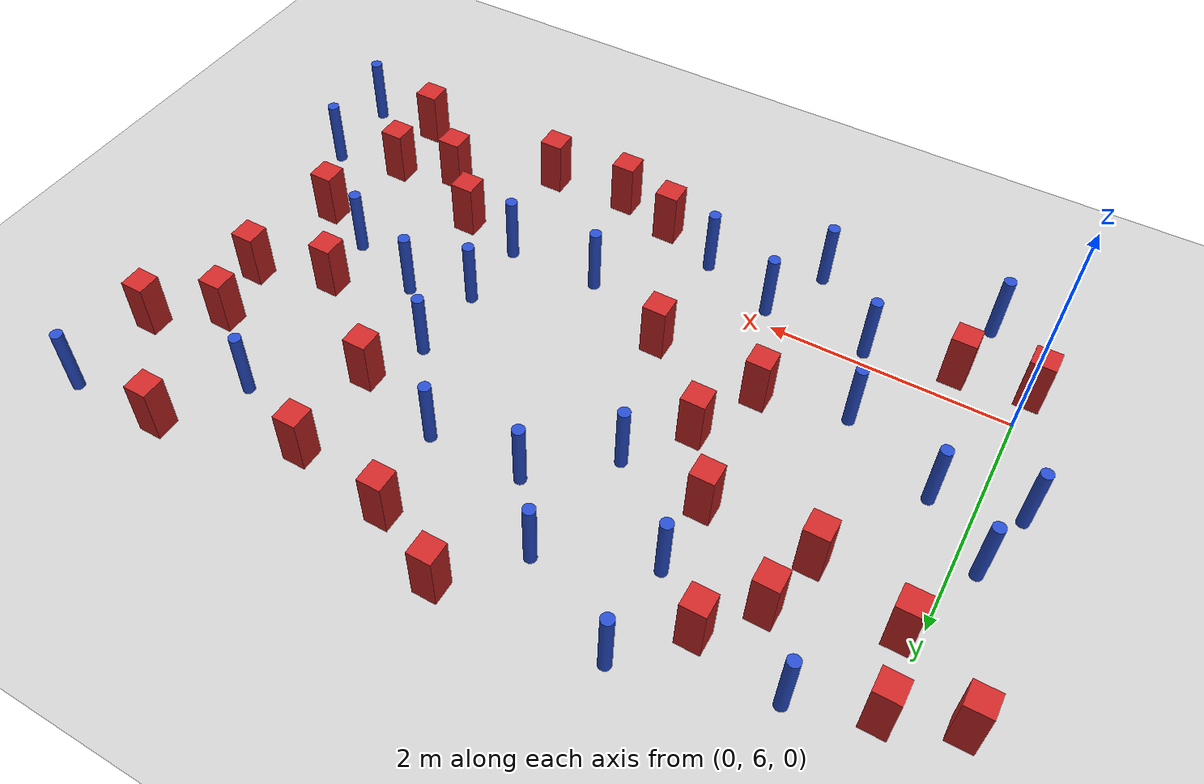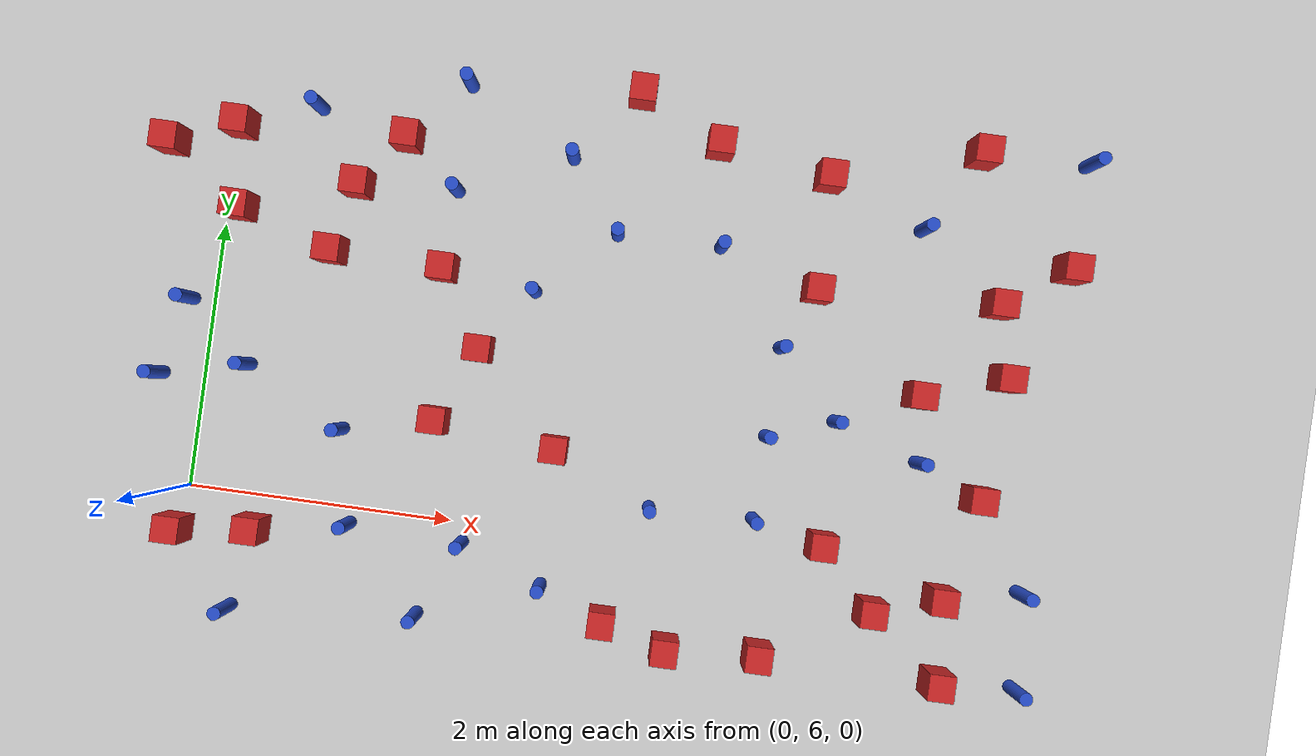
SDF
<sdf version="1.6">
 <world name="default">
  <model name="ground_plane">
   <static>1</static>
   <link name="link">
    <collision name="collision">
     <geometry><plane><normal>0 0 1</normal><size>100 100</size></plane></geometry>
     <surface><friction><ode><mu>100</mu><mu2>50</mu2></ode></friction></surface>
    </collision>
    <visual name="visual">
     <cast_shadows>0</cast_shadows>
     <geometry><plane><normal>0 0 1</normal><size>100 100</size></plane></geometry>
     <material>
      <ambient>1.0 1.0 1.0 1.0</ambient>
      <diffuse>0.8 0.8 0.8 1.0</diffuse>
      <specular>0.01 0.01 0.01 1.000000</specular>
     </material>
    </visual>
   </link>
  </model>
  <model name="square_post_obstacle1">
   <static>true</static>
   <pose>5.38533942478 7.42540812029 8.22691968438e-08 7.2212513382e-06 -7.54495500217e-07 2.29674213826e-05</pose>
   <link name="link">
    <pose>0 0 0.25 0 -0 0</pose>
    <inertial>
     <mass>100</mass>
     <inertia>
      <ixx>0.166667</ixx>
      <ixy>0</ixy>
      <ixz>0</ixz>
      <iyy>0.166667</iyy>
      <iyz>0</iyz>
      <izz>0.166667</izz>
     </inertia>
    </inertial>
    <collision name="collision"><geometry><box><size>.2 .2 .5</size></box></geometry></collision>
    <visual name="visual">
     <geometry><box><size>.2 .2 .5</size></box></geometry>
     <material>
      <script><name>Gazebo/Red</name><uri>file://media/materials/scripts/gazebo.material</uri></script>
     </material>
    </visual>
   </link>
  </model>
  <model name="pole_obstacle0">
   <static>true</static>
   <pose>2.56448294464 8.85776135916 2.88873142074e-08 -9.90536692318e-09 4.6021994893e-07 -1.20965994988e-07</pose>
   <link name="link">
    <pose>0 0 0.3 0 -0 0</pose>
    <inertial>
     <mass>1</mass>
     <inertia><ixx>0.145833</ixx><ixy>0</ixy><ixz>0</ixz><iyy>0.145833</iyy><iyz>0</iyz><izz>0.125</izz></inertia>
    </inertial>
    <collision name="collision">
     <geometry><cylinder><radius>0.05</radius><length>.6</length></cylinder></geometry>
    </collision>
    <visual name="visual">
     <geometry><cylinder><radius>0.05</radius><length>.6</length></cylinder></geometry>
     <material>
      <script><name>Gazebo/Blue</name><uri>file://media/materials/scripts/gazebo.material</uri></script>
     </material>
    </visual>
   </link>
  </model>
  <model name="pole_obstacle3">
   <static>true</static>
   <pose>1.09669443753 6.58516952447 2.88873142074e-08 -9.90536689852e-09 4.60219948989e-07 -1.2096599496e-07</pose>
   <link name="link">
    <pose>0 0 0.3 0 -0 0</pose>
    <inertial>
     <mass>1</mass>
     <inertia><ixx>0.145833</ixx><ixy>0</ixy><ixz>0</ixz><iyy>0.145833</iyy><iyz>0</iyz><izz>0.125</izz></inertia>
    </inertial>
    <collision name="collision">
     <geometry><cylinder><radius>0.05</radius><length>.6</length></cylinder></geometry>
    </collision>
    <visual name="visual">
     <geometry><cylinder><radius>0.05</radius><length>.6</length></cylinder></geometry>
     <material>
      <script><name>Gazebo/Blue</name><uri>file://media/materials/scripts/gazebo.material</uri></script>
     </material>
    </visual>
   </link>
  </model>
  <model name="square_post_obstacle13">
   <static>true</static>
   <pose>3.24126532681 5.41806297462 8.22691968438e-08 7.2212513382e-06 -7.54495500217e-07 2.29674213826e-05</pose>
   <link name="link">
    <pose>0 0 0.25 0 -0 0</pose>
    <inertial>
     <mass>100</mass>
     <inertia>
      <ixx>0.166667</ixx>
      <ixy>0</ixy>
      <ixz>0</ixz>
      <iyy>0.166667</iyy>
      <iyz>0</iyz>
      <izz>0.166667</izz>
     </inertia>
    </inertial>
    <collision name="collision"><geometry><box><size>.2 .2 .5</size></box></geometry></collision>
    <visual name="visual">
     <geometry><box><size>.2 .2 .5</size></box></geometry>
     <material>
      <script><name>Gazebo/Red</name><uri>file://media/materials/scripts/gazebo.material</uri></script>
     </material>
    </visual>
   </link>
  </model>
  <model name="square_post_obstacle15">
   <static>true</static>
   <pose>0.545075643161 5.75793375403 8.22691968438e-08 7.2212513382e-06 -7.54495500217e-07 2.29674213826e-05</pose>
   <link name="link">
    <pose>0 0 0.25 0 -0 0</pose>
    <inertial>
     <mass>100</mass>
     <inertia>
      <ixx>0.166667</ixx>
      <ixy>0</ixy>
      <ixz>0</ixz>
      <iyy>0.166667</iyy>
      <iyz>0</iyz>
      <izz>0.166667</izz>
     </inertia>
    </inertial>
    <collision name="collision"><geometry><box><size>.2 .2 .5</size></box></geometry></collision>
    <visual name="visual">
     <geometry><box><size>.2 .2 .5</size></box></geometry>
     <material>
      <script><name>Gazebo/Red</name><uri>file://media/materials/scripts/gazebo.material</uri></script>
     </material>
    </visual>
   </link>
  </model>
  <model name="square_post_obstacle20">
   <static>true</static>
   <pose>2.71749468923 6.65501447354 8.22691968438e-08 7.2212513382e-06 -7.54495500217e-07 2.29674213826e-05</pose>
   <link name="link">
    <pose>0 0 0.25 0 -0 0</pose>
    <inertial>
     <mass>100</mass>
     <inertia>
      <ixx>0.166667</ixx>
      <ixy>0</ixy>
      <ixz>0</ixz>
      <iyy>0.166667</iyy>
      <iyz>0</iyz>
      <izz>0.166667</izz>
     </inertia>
    </inertial>
    <collision name="collision"><geometry><box><size>.2 .2 .5</size></box></geometry></collision>
    <visual name="visual">
     <geometry><box><size>.2 .2 .5</size></box></geometry>
     <material>
      <script><name>Gazebo/Red</name><uri>file://media/materials/scripts/gazebo.material</uri></script>
     </material>
    </visual>
   </link>
  </model>
  <model name="pole_obstacle17">
   <static>true</static>
   <pose>1.24541606687 5.88182453887 2.88873142074e-08 -9.90536689852e-09 4.60219948989e-07 -1.2096599496e-07</pose>
   <link name="link">
    <pose>0 0 0.3 0 -0 0</pose>
    <inertial>
     <mass>1</mass>
     <inertia><ixx>0.145833</ixx><ixy>0</ixy><ixz>0</ixz><iyy>0.145833</iyy><iyz>0</iyz><izz>0.125</izz></inertia>
    </inertial>
    <collision name="collision">
     <geometry><cylinder><radius>0.05</radius><length>.6</length></cylinder></geometry>
    </collision>
    <visual name="visual">
     <geometry><cylinder><radius>0.05</radius><length>.6</length></cylinder></geometry>
     <material>
      <script><name>Gazebo/Blue</name><uri>file://media/materials/scripts/gazebo.material</uri></script>
     </material>
    </visual>
   </link>
  </model>
  <model name="square_post_obstacle25">
   <static>true</static>
   <pose>0.854887156329 7.91558917575 8.22691968438e-08 7.22125133819e-06 -7.54495500217e-07 2.29674213826e-05</pose>
   <link name="link">
    <pose>0 0 0.25 0 -0 0</pose>
    <inertial>
     <mass>100</mass>
     <inertia>
      <ixx>0.166667</ixx>
      <ixy>0</ixy>
      <ixz>0</ixz>
      <iyy>0.166667</iyy>
      <iyz>0</iyz>
      <izz>0.166667</izz>
     </inertia>
    </inertial>
    <collision name="collision"><geometry><box><size>.2 .2 .5</size></box></geometry></collision>
    <visual name="visual">
     <geometry><box><size>.2 .2 .5</size></box></geometry>
     <material>
      <script><name>Gazebo/Red</name><uri>file://media/materials/scripts/gazebo.material</uri></script>
     </material>
    </visual>
   </link>
  </model>
  <model name="square_post_obstacle27">
   <static>true</static>
   <pose>-0.036564975498 5.68744413716 8.22691968438e-08 7.2212513382e-06 -7.54495500217e-07 2.29674213826e-05</pose>
   <link name="link">
    <pose>0 0 0.25 0 -0 0</pose>
    <inertial>
     <mass>100</mass>
     <inertia>
      <ixx>0.166667</ixx>
      <ixy>0</ixy>
      <ixz>0</ixz>
      <iyy>0.166667</iyy>
      <iyz>0</iyz>
      <izz>0.166667</izz>
     </inertia>
    </inertial>
    <collision name="collision"><geometry><box><size>.2 .2 .5</size></box></geometry></collision>
    <visual name="visual">
     <geometry><box><size>.2 .2 .5</size></box></geometry>
     <material>
      <script><name>Gazebo/Red</name><uri>file://media/materials/scripts/gazebo.material</uri></script>
     </material>
    </visual>
   </link>
  </model>
  <model name="pole_obstacle29">
   <static>true</static>
   <pose>5.25513638725 8.67251936363 2.88873142074e-08 -9.9053668967e-09 4.60219948993e-07 -1.20965994957e-07</pose>
   <link name="link">
    <pose>0 0 0.3 0 -0 0</pose>
    <inertial>
     <mass>1</mass>
     <inertia><ixx>0.145833</ixx><ixy>0</ixy><ixz>0</ixz><iyy>0.145833</iyy><iyz>0</iyz><izz>0.125</izz></inertia>
    </inertial>
    <collision name="collision">
     <geometry><cylinder><radius>0.05</radius><length>.6</length></cylinder></geometry>
    </collision>
    <visual name="visual">
     <geometry><cylinder><radius>0.05</radius><length>.6</length></cylinder></geometry>
     <material>
      <script><name>Gazebo/Blue</name><uri>file://media/materials/scripts/gazebo.material</uri></script>
     </material>
    </visual>
   </link>
  </model>
  <model name="square_post_obstacle44">
   <static>true</static>
   <pose>1.70687928684 7.89476095983 8.22691968438e-08 7.2212513382e-06 -7.54495500217e-07 2.29674213826e-05</pose>
   <link name="link">
    <pose>0 0 0.25 0 -0 0</pose>
    <inertial>
     <mass>100</mass>
     <inertia>
      <ixx>0.166667</ixx>
      <ixy>0</ixy>
      <ixz>0</ixz>
      <iyy>0.166667</iyy>
      <iyz>0</iyz>
      <izz>0.166667</izz>
     </inertia>
    </inertial>
    <collision name="collision"><geometry><box><size>.2 .2 .5</size></box></geometry></collision>
    <visual name="visual">
     <geometry><box><size>.2 .2 .5</size></box></geometry>
     <material>
      <script><name>Gazebo/Red</name><uri>file://media/materials/scripts/gazebo.material</uri></script>
     </material>
    </visual>
   </link>
  </model>
  <model name="square_post_obstacle47">
   <static>true</static>
   <pose>4.80229484895 6.2104090487 8.22691968438e-08 7.2212513382e-06 -7.54495500217e-07 2.29674213826e-05</pose>
   <link name="link">
    <pose>0 0 0.25 0 -0 0</pose>
    <inertial>
     <mass>100</mass>
     <inertia>
      <ixx>0.166667</ixx>
      <ixy>0</ixy>
      <ixz>0</ixz>
      <iyy>0.166667</iyy>
      <iyz>0</iyz>
      <izz>0.166667</izz>
     </inertia>
    </inertial>
    <collision name="collision"><geometry><box><size>.2 .2 .5</size></box></geometry></collision>
    <visual name="visual">
     <geometry><box><size>.2 .2 .5</size></box></geometry>
     <material>
      <script><name>Gazebo/Red</name><uri>file://media/materials/scripts/gazebo.material</uri></script>
     </material>
    </visual>
   </link>
  </model>
  <model name="pole_obstacle50">
   <static>true</static>
   <pose>4.79215617096 7.14678605886 2.88873142074e-08 -9.90536690842e-09 4.60219948965e-07 -1.20965994976e-07</pose>
   <link name="link">
    <pose>0 0 0.3 0 -0 0</pose>
    <inertial>
     <mass>1</mass>
     <inertia><ixx>0.145833</ixx><ixy>0</ixy><ixz>0</ixz><iyy>0.145833</iyy><iyz>0</iyz><izz>0.125</izz></inertia>
    </inertial>
    <collision name="collision">
     <geometry><cylinder><radius>0.05</radius><length>.6</length></cylinder></geometry>
    </collision>
    <visual name="visual">
     <geometry><cylinder><radius>0.05</radius><length>.6</length></cylinder></geometry>
     <material>
      <script><name>Gazebo/Blue</name><uri>file://media/materials/scripts/gazebo.material</uri></script>
     </material>
    </visual>
   </link>
  </model>
  <model name="pole_obstacle52">
   <static>true</static>
   <pose>3.48553360079 6.30894622758 2.88873142074e-08 -9.90536689859e-09 4.60219948989e-07 -1.20965994961e-07</pose>
   <link name="link">
    <pose>0 0 0.3 0 -0 0</pose>
    <inertial>
     <mass>1</mass>
     <inertia><ixx>0.145833</ixx><ixy>0</ixy><ixz>0</ixz><iyy>0.145833</iyy><iyz>0</iyz><izz>0.125</izz></inertia>
    </inertial>
    <collision name="collision">
     <geometry><cylinder><radius>0.05</radius><length>.6</length></cylinder></geometry>
    </collision>
    <visual name="visual">
     <geometry><cylinder><radius>0.05</radius><length>.6</length></cylinder></geometry>
     <material>
      <script><name>Gazebo/Blue</name><uri>file://media/materials/scripts/gazebo.material</uri></script>
     </material>
    </visual>
   </link>
  </model>
  <model name="pole_obstacle57">
   <static>true</static>
   <pose>6.34790196474 6.04743958054 2.88873142074e-08 -9.90536690842e-09 4.60219948965e-07 -1.20965994976e-07</pose>
   <link name="link">
    <pose>0 0 0.3 0 -0 0</pose>
    <inertial>
     <mass>1</mass>
     <inertia><ixx>0.145833</ixx><ixy>0</ixy><ixz>0</ixz><iyy>0.145833</iyy><iyz>0</iyz><izz>0.125</izz></inertia>
    </inertial>
    <collision name="collision">
     <geometry><cylinder><radius>0.05</radius><length>.6</length></cylinder></geometry>
    </collision>
    <visual name="visual">
     <geometry><cylinder><radius>0.05</radius><length>.6</length></cylinder></geometry>
     <material>
      <script><name>Gazebo/Blue</name><uri>file://media/materials/scripts/gazebo.material</uri></script>
     </material>
    </visual>
   </link>
  </model>
  <model name="pole_obstacle61">
   <static>true</static>
   <pose>2.11292469085 5.85276782938 2.88873142074e-08 -9.90536689859e-09 4.60219948989e-07 -1.20965994961e-07</pose>
   <link name="link">
    <pose>0 0 0.3 0 -0 0</pose>
    <inertial>
     <mass>1</mass>
     <inertia><ixx>0.145833</ixx><ixy>0</ixy><ixz>0</ixz><iyy>0.145833</iyy><iyz>0</iyz><izz>0.125</izz></inertia>
    </inertial>
    <collision name="collision">
     <geometry><cylinder><radius>0.05</radius><length>.6</length></cylinder></geometry>
    </collision>
    <visual name="visual">
     <geometry><cylinder><radius>0.05</radius><length>.6</length></cylinder></geometry>
     <material>
      <script><name>Gazebo/Blue</name><uri>file://media/materials/scripts/gazebo.material</uri></script>
     </material>
    </visual>
   </link>
  </model>
  <model name="pole_obstacle63">
   <static>true</static>
   <pose>1.72531428644 9.30098951386 2.88873142074e-08 -9.90536690474e-09 4.60219948974e-07 -1.2096599497e-07</pose>
   <link name="link">
    <pose>0 0 0.3 0 -0 0</pose>
    <inertial>
     <mass>1</mass>
     <inertia><ixx>0.145833</ixx><ixy>0</ixy><ixz>0</ixz><iyy>0.145833</iyy><iyz>0</iyz><izz>0.125</izz></inertia>
    </inertial>
    <collision name="collision">
     <geometry><cylinder><radius>0.05</radius><length>.6</length></cylinder></geometry>
    </collision>
    <visual name="visual">
     <geometry><cylinder><radius>0.05</radius><length>.6</length></cylinder></geometry>
     <material>
      <script><name>Gazebo/Blue</name><uri>file://media/materials/scripts/gazebo.material</uri></script>
     </material>
    </visual>
   </link>
  </model>
  <model name="pole_obstacle64">
   <static>true</static>
   <pose>1.84099775758 5.27077962144 2.88873142074e-08 -9.90536689852e-09 4.60219948989e-07 -1.2096599496e-07</pose>
   <link name="link">
    <pose>0 0 0.3 0 -0 0</pose>
    <inertial>
     <mass>1</mass>
     <inertia><ixx>0.145833</ixx><ixy>0</ixy><ixz>0</ixz><iyy>0.145833</iyy><iyz>0</iyz><izz>0.125</izz></inertia>
    </inertial>
    <collision name="collision">
     <geometry><cylinder><radius>0.05</radius><length>.6</length></cylinder></geometry>
    </collision>
    <visual name="visual">
     <geometry><cylinder><radius>0.05</radius><length>.6</length></cylinder></geometry>
     <material>
      <script><name>Gazebo/Blue</name><uri>file://media/materials/scripts/gazebo.material</uri></script>
     </material>
    </visual>
   </link>
  </model>
  <model name="pole_obstacle66">
   <static>true</static>
   <pose>4.2906462166 6.96557399473 2.88873142074e-08 -9.90536690842e-09 4.60219948965e-07 -1.20965994976e-07</pose>
   <link name="link">
    <pose>0 0 0.3 0 -0 0</pose>
    <inertial>
     <mass>1</mass>
     <inertia><ixx>0.145833</ixx><ixy>0</ixy><ixz>0</ixz><iyy>0.145833</iyy><iyz>0</iyz><izz>0.125</izz></inertia>
    </inertial>
    <collision name="collision">
     <geometry><cylinder><radius>0.05</radius><length>.6</length></cylinder></geometry>
    </collision>
    <visual name="visual">
     <geometry><cylinder><radius>0.05</radius><length>.6</length></cylinder></geometry>
     <material>
      <script><name>Gazebo/Blue</name><uri>file://media/materials/scripts/gazebo.material</uri></script>
     </material>
    </visual>
   </link>
  </model>
  <model name="square_post_obstacle72">
   <static>true</static>
   <pose>3.65188488439 9.097990519 8.22691968438e-08 7.22125133819e-06 -7.54495500217e-07 2.29674213826e-05</pose>
   <link name="link">
    <pose>0 0 0.25 0 -0 0</pose>
    <inertial>
     <mass>100</mass>
     <inertia>
      <ixx>0.166667</ixx>
      <ixy>0</ixy>
      <ixz>0</ixz>
      <iyy>0.166667</iyy>
      <iyz>0</iyz>
      <izz>0.166667</izz>
     </inertia>
    </inertial>
    <collision name="collision"><geometry><box><size>.2 .2 .5</size></box></geometry></collision>
    <visual name="visual">
     <geometry><box><size>.2 .2 .5</size></box></geometry>
     <material>
      <script><name>Gazebo/Red</name><uri>file://media/materials/scripts/gazebo.material</uri></script>
     </material>
    </visual>
   </link>
  </model>
  <model name="pole_obstacle70">
   <static>true</static>
   <pose>4.27600694717 6.33198916929 2.88873142074e-08 -9.90536690842e-09 4.60219948965e-07 -1.20965994976e-07</pose>
   <link name="link">
    <pose>0 0 0.3 0 -0 0</pose>
    <inertial>
     <mass>1</mass>
     <inertia><ixx>0.145833</ixx><ixy>0</ixy><ixz>0</ixz><iyy>0.145833</iyy><iyz>0</iyz><izz>0.125</izz></inertia>
    </inertial>
    <collision name="collision">
     <geometry><cylinder><radius>0.05</radius><length>.6</length></cylinder></geometry>
    </collision>
    <visual name="visual">
     <geometry><cylinder><radius>0.05</radius><length>.6</length></cylinder></geometry>
     <material>
      <script><name>Gazebo/Blue</name><uri>file://media/materials/scripts/gazebo.material</uri></script>
     </material>
    </visual>
   </link>
  </model>
  <model name="square_post_obstacle78">
   <static>true</static>
   <pose>6.01532229847 7.6395633321 8.22691968438e-08 7.2212513382e-06 -7.54495500217e-07 2.29674213826e-05</pose>
   <link name="link">
    <pose>0 0 0.25 0 -0 0</pose>
    <inertial>
     <mass>100</mass>
     <inertia>
      <ixx>0.166667</ixx>
      <ixy>0</ixy>
      <ixz>0</ixz>
      <iyy>0.166667</iyy>
      <iyz>0</iyz>
      <izz>0.166667</izz>
     </inertia>
    </inertial>
    <collision name="collision"><geometry><box><size>.2 .2 .5</size></box></geometry></collision>
    <visual name="visual">
     <geometry><box><size>.2 .2 .5</size></box></geometry>
     <material>
      <script><name>Gazebo/Red</name><uri>file://media/materials/scripts/gazebo.material</uri></script>
     </material>
    </visual>
   </link>
  </model>
  <model name="square_post_obstacle79">
   <static>true</static>
   <pose>0.0546084250532 8.76833307048 8.22691968438e-08 7.22125133819e-06 -7.54495500217e-07 2.29674213826e-05</pose>
   <link name="link">
    <pose>0 0 0.25 0 -0 0</pose>
    <inertial>
     <mass>100</mass>
     <inertia>
      <ixx>0.166667</ixx>
      <ixy>0</ixy>
      <ixz>0</ixz>
      <iyy>0.166667</iyy>
      <iyz>0</iyz>
      <izz>0.166667</izz>
     </inertia>
    </inertial>
    <collision name="collision"><geometry><box><size>.2 .2 .5</size></box></geometry></collision>
    <visual name="visual">
     <geometry><box><size>.2 .2 .5</size></box></geometry>
     <material>
      <script><name>Gazebo/Red</name><uri>file://media/materials/scripts/gazebo.material</uri></script>
     </material>
    </visual>
   </link>
  </model>
  <model name="pole_obstacle83">
   <static>true</static>
   <pose>6.4319382459 9.32217653729 2.88873142074e-08 -9.9053668967e-09 4.60219948993e-07 -1.20965994957e-07</pose>
   <link name="link">
    <pose>0 0 0.3 0 -0 0</pose>
    <inertial>
     <mass>1</mass>
     <inertia><ixx>0.145833</ixx><ixy>0</ixy><ixz>0</ixz><iyy>0.145833</iyy><iyz>0</iyz><izz>0.125</izz></inertia>
    </inertial>
    <collision name="collision">
     <geometry><cylinder><radius>0.05</radius><length>.6</length></cylinder></geometry>
    </collision>
    <visual name="visual">
     <geometry><cylinder><radius>0.05</radius><length>.6</length></cylinder></geometry>
     <material>
      <script><name>Gazebo/Blue</name><uri>file://media/materials/scripts/gazebo.material</uri></script>
     </material>
    </visual>
   </link>
  </model>
  <model name="square_post_obstacle82">
   <static>true</static>
   <pose>-0.445608533161 8.5755404694 8.22691968438e-08 7.22125133819e-06 -7.54495500217e-07 2.29674213826e-05</pose>
   <link name="link">
    <pose>0 0 0.25 0 -0 0</pose>
    <inertial>
     <mass>100</mass>
     <inertia>
      <ixx>0.166667</ixx>
      <ixy>0</ixy>
      <ixz>0</ixz>
      <iyy>0.166667</iyy>
      <iyz>0</iyz>
      <izz>0.166667</izz>
     </inertia>
    </inertial>
    <collision name="collision"><geometry><box><size>.2 .2 .5</size></box></geometry></collision>
    <visual name="visual">
     <geometry><box><size>.2 .2 .5</size></box></geometry>
     <material>
      <script><name>Gazebo/Red</name><uri>file://media/materials/scripts/gazebo.material</uri></script>
     </material>
    </visual>
   </link>
  </model>
  <model name="pole_obstacle90">
   <static>true</static>
   <pose>3.76343319215 8.34033600516 2.88873142074e-08 -9.90536692318e-09 4.6021994893e-07 -1.20965994988e-07</pose>
   <link name="link">
    <pose>0 0 0.3 0 -0 0</pose>
    <inertial>
     <mass>1</mass>
     <inertia><ixx>0.145833</ixx><ixy>0</ixy><ixz>0</ixz><iyy>0.145833</iyy><iyz>0</iyz><izz>0.125</izz></inertia>
    </inertial>
    <collision name="collision">
     <geometry><cylinder><radius>0.05</radius><length>.6</length></cylinder></geometry>
    </collision>
    <visual name="visual">
     <geometry><cylinder><radius>0.05</radius><length>.6</length></cylinder></geometry>
     <material>
      <script><name>Gazebo/Blue</name><uri>file://media/materials/scripts/gazebo.material</uri></script>
     </material>
    </visual>
   </link>
  </model>
  <model name="square_post_obstacle85">
   <static>true</static>
   <pose>5.61468776246 9.29673372061 8.22691968438e-08 7.22125133819e-06 -7.54495500217e-07 2.29674213826e-05</pose>
   <link name="link">
    <pose>0 0 0.25 0 -0 0</pose>
    <inertial>
     <mass>100</mass>
     <inertia>
      <ixx>0.166667</ixx>
      <ixy>0</ixy>
      <ixz>0</ixz>
      <iyy>0.166667</iyy>
      <iyz>0</iyz>
      <izz>0.166667</izz>
     </inertia>
    </inertial>
    <collision name="collision"><geometry><box><size>.2 .2 .5</size></box></geometry></collision>
    <visual name="visual">
     <geometry><box><size>.2 .2 .5</size></box></geometry>
     <material>
      <script><name>Gazebo/Red</name><uri>file://media/materials/scripts/gazebo.material</uri></script>
     </material>
    </visual>
   </link>
  </model>
  <model name="square_post_obstacle86">
   <static>true</static>
   <pose>4.43594356492 5.3265579446 8.22691968438e-08 7.2212513382e-06 -7.54495500217e-07 2.29674213826e-05</pose>
   <link name="link">
    <pose>0 0 0.25 0 -0 0</pose>
    <inertial>
     <mass>100</mass>
     <inertia>
      <ixx>0.166667</ixx>
      <ixy>0</ixy>
      <ixz>0</ixz>
      <iyy>0.166667</iyy>
      <iyz>0</iyz>
      <izz>0.166667</izz>
     </inertia>
    </inertial>
    <collision name="collision"><geometry><box><size>.2 .2 .5</size></box></geometry></collision>
    <visual name="visual">
     <geometry><box><size>.2 .2 .5</size></box></geometry>
     <material>
      <script><name>Gazebo/Red</name><uri>file://media/materials/scripts/gazebo.material</uri></script>
     </material>
    </visual>
   </link>
  </model>
  <model name="pole_obstacle101">
   <static>true</static>
   <pose>-0.317735804744 6.82541223297 2.88873142074e-08 -9.90536689683e-09 4.60219948993e-07 -1.20965994957e-07</pose>
   <link name="link">
    <pose>0 0 0.3 0 -0 0</pose>
    <inertial>
     <mass>1</mass>
     <inertia><ixx>0.145833</ixx><ixy>0</ixy><ixz>0</ixz><iyy>0.145833</iyy><iyz>0</iyz><izz>0.125</izz></inertia>
    </inertial>
    <collision name="collision">
     <geometry><cylinder><radius>0.05</radius><length>.6</length></cylinder></geometry>
    </collision>
    <visual name="visual">
     <geometry><cylinder><radius>0.05</radius><length>.6</length></cylinder></geometry>
     <material>
      <script><name>Gazebo/Blue</name><uri>file://media/materials/scripts/gazebo.material</uri></script>
     </material>
    </visual>
   </link>
  </model>
  <model name="square_post_obstacle90">
   <static>true</static>
   <pose>5.88691625211 8.18396295953 8.22691968438e-08 7.22125133819e-06 -7.54495500217e-07 2.29674213826e-05</pose>
   <link name="link">
    <pose>0 0 0.25 0 -0 0</pose>
    <inertial>
     <mass>100</mass>
     <inertia>
      <ixx>0.166667</ixx>
      <ixy>0</ixy>
      <ixz>0</ixz>
      <iyy>0.166667</iyy>
      <iyz>0</iyz>
      <izz>0.166667</izz>
     </inertia>
    </inertial>
    <collision name="collision"><geometry><box><size>.2 .2 .5</size></box></geometry></collision>
    <visual name="visual">
     <geometry><box><size>.2 .2 .5</size></box></geometry>
     <material>
      <script><name>Gazebo/Red</name><uri>file://media/materials/scripts/gazebo.material</uri></script>
     </material>
    </visual>
   </link>
  </model>
  <model name="square_post_obstacle91">
   <static>true</static>
   <pose>5.92783263245 6.71005214555 8.22691968438e-08 7.2212513382e-06 -7.54495500217e-07 2.29674213826e-05</pose>
   <link name="link">
    <pose>0 0 0.25 0 -0 0</pose>
    <inertial>
     <mass>100</mass>
     <inertia>
      <ixx>0.166667</ixx>
      <ixy>0</ixy>
      <ixz>0</ixz>
      <iyy>0.166667</iyy>
      <iyz>0</iyz>
      <izz>0.166667</izz>
     </inertia>
    </inertial>
    <collision name="collision"><geometry><box><size>.2 .2 .5</size></box></geometry></collision>
    <visual name="visual">
     <geometry><box><size>.2 .2 .5</size></box></geometry>
     <material>
      <script><name>Gazebo/Red</name><uri>file://media/materials/scripts/gazebo.material</uri></script>
     </material>
    </visual>
   </link>
  </model>
  <model name="pole_obstacle108">
   <static>true</static>
   <pose>0.42959844071 5.14114575836 2.88873142074e-08 -9.90536689683e-09 4.60219948993e-07 -1.20965994957e-07</pose>
   <link name="link">
    <pose>0 0 0.3 0 -0 0</pose>
    <inertial>
     <mass>1</mass>
     <inertia><ixx>0.145833</ixx><ixy>0</ixy><ixz>0</ixz><iyy>0.145833</iyy><iyz>0</iyz><izz>0.125</izz></inertia>
    </inertial>
    <collision name="collision">
     <geometry><cylinder><radius>0.05</radius><length>.6</length></cylinder></geometry>
    </collision>
    <visual name="visual">
     <geometry><cylinder><radius>0.05</radius><length>.6</length></cylinder></geometry>
     <material>
      <script><name>Gazebo/Blue</name><uri>file://media/materials/scripts/gazebo.material</uri></script>
     </material>
    </visual>
   </link>
  </model>
  <model name="pole_obstacle114">
   <static>true</static>
   <pose>0.621657186271 8.97539326978 2.88873142074e-08 -9.90536690779e-09 4.60219948967e-07 -1.20965994975e-07</pose>
   <link name="link">
    <pose>0 0 0.3 0 -0 0</pose>
    <inertial>
     <mass>1</mass>
     <inertia><ixx>0.145833</ixx><ixy>0</ixy><ixz>0</ixz><iyy>0.145833</iyy><iyz>0</iyz><izz>0.125</izz></inertia>
    </inertial>
    <collision name="collision">
     <geometry><cylinder><radius>0.05</radius><length>.6</length></cylinder></geometry>
    </collision>
    <visual name="visual">
     <geometry><cylinder><radius>0.05</radius><length>.6</length></cylinder></geometry>
     <material>
      <script><name>Gazebo/Blue</name><uri>file://media/materials/scripts/gazebo.material</uri></script>
     </material>
    </visual>
   </link>
  </model>
  <model name="pole_obstacle115">
   <static>true</static>
   <pose>1.72637377553 8.49153905973 2.88873142074e-08 -9.90536690474e-09 4.60219948974e-07 -1.2096599497e-07</pose>
   <link name="link">
    <pose>0 0 0.3 0 -0 0</pose>
    <inertial>
     <mass>1</mass>
     <inertia><ixx>0.145833</ixx><ixy>0</ixy><ixz>0</ixz><iyy>0.145833</iyy><iyz>0</iyz><izz>0.125</izz></inertia>
    </inertial>
    <collision name="collision">
     <geometry><cylinder><radius>0.05</radius><length>.6</length></cylinder></geometry>
    </collision>
    <visual name="visual">
     <geometry><cylinder><radius>0.05</radius><length>.6</length></cylinder></geometry>
     <material>
      <script><name>Gazebo/Blue</name><uri>file://media/materials/scripts/gazebo.material</uri></script>
     </material>
    </visual>
   </link>
  </model>
  <model name="square_post_obstacle105">
   <static>true</static>
   <pose>5.73955564696 5.92797312336 8.22691968438e-08 7.2212513382e-06 -7.54495500217e-07 2.29674213826e-05</pose>
   <link name="link">
    <pose>0 0 0.25 0 -0 0</pose>
    <inertial>
     <mass>100</mass>
     <inertia>
      <ixx>0.166667</ixx>
      <ixy>0</ixy>
      <ixz>0</ixz>
      <iyy>0.166667</iyy>
      <iyz>0</iyz>
      <izz>0.166667</izz>
     </inertia>
    </inertial>
    <collision name="collision"><geometry><box><size>.2 .2 .5</size></box></geometry></collision>
    <visual name="visual">
     <geometry><box><size>.2 .2 .5</size></box></geometry>
     <material>
      <script><name>Gazebo/Red</name><uri>file://media/materials/scripts/gazebo.material</uri></script>
     </material>
    </visual>
   </link>
  </model>
  <model name="square_post_obstacle107">
   <static>true</static>
   <pose>2.05608606711 7.32635534466 8.22691968438e-08 7.22125133819e-06 -7.54495500217e-07 2.29674213826e-05</pose>
   <link name="link">
    <pose>0 0 0.25 0 -0 0</pose>
    <inertial>
     <mass>100</mass>
     <inertia>
      <ixx>0.166667</ixx>
      <ixy>0</ixy>
      <ixz>0</ixz>
      <iyy>0.166667</iyy>
      <iyz>0</iyz>
      <izz>0.166667</izz>
     </inertia>
    </inertial>
    <collision name="collision"><geometry><box><size>.2 .2 .5</size></box></geometry></collision>
    <visual name="visual">
     <geometry><box><size>.2 .2 .5</size></box></geometry>
     <material>
      <script><name>Gazebo/Red</name><uri>file://media/materials/scripts/gazebo.material</uri></script>
     </material>
    </visual>
   </link>
  </model>
  <model name="pole_obstacle124">
   <static>true</static>
   <pose>2.97431112962 8.32802126655 2.88873142074e-08 -9.90536692318e-09 4.6021994893e-07 -1.20965994988e-07</pose>
   <link name="link">
    <pose>0 0 0.3 0 -0 0</pose>
    <inertial>
     <mass>1</mass>
     <inertia><ixx>0.145833</ixx><ixy>0</ixy><ixz>0</ixz><iyy>0.145833</iyy><iyz>0</iyz><izz>0.125</izz></inertia>
    </inertial>
    <collision name="collision">
     <geometry><cylinder><radius>0.05</radius><length>.6</length></cylinder></geometry>
    </collision>
    <visual name="visual">
     <geometry><cylinder><radius>0.05</radius><length>.6</length></cylinder></geometry>
     <material>
      <script><name>Gazebo/Blue</name><uri>file://media/materials/scripts/gazebo.material</uri></script>
     </material>
    </visual>
   </link>
  </model>
  <model name="pole_obstacle126">
   <static>true</static>
   <pose>-0.164030379375 7.41375744552 2.88873142074e-08 -9.90536689816e-09 4.6021994899e-07 -1.20965994961e-07</pose>
   <link name="link">
    <pose>0 0 0.3 0 -0 0</pose>
    <inertial>
     <mass>1</mass>
     <inertia><ixx>0.145833</ixx><ixy>0</ixy><ixz>0</ixz><iyy>0.145833</iyy><iyz>0</iyz><izz>0.125</izz></inertia>
    </inertial>
    <collision name="collision">
     <geometry><cylinder><radius>0.05</radius><length>.6</length></cylinder></geometry>
    </collision>
    <visual name="visual">
     <geometry><cylinder><radius>0.05</radius><length>.6</length></cylinder></geometry>
     <material>
      <script><name>Gazebo/Blue</name><uri>file://media/materials/scripts/gazebo.material</uri></script>
     </material>
    </visual>
   </link>
  </model>
  <model name="square_post_obstacle116">
   <static>true</static>
   <pose>4.49857906016 8.96372978199 8.22691968438e-08 7.22125133819e-06 -7.54495500217e-07 2.29674213826e-05</pose>
   <link name="link">
    <pose>0 0 0.25 0 -0 0</pose>
    <inertial>
     <mass>100</mass>
     <inertia>
      <ixx>0.166667</ixx>
      <ixy>0</ixy>
      <ixz>0</ixz>
      <iyy>0.166667</iyy>
      <iyz>0</iyz>
      <izz>0.166667</izz>
     </inertia>
    </inertial>
    <collision name="collision"><geometry><box><size>.2 .2 .5</size></box></geometry></collision>
    <visual name="visual">
     <geometry><box><size>.2 .2 .5</size></box></geometry>
     <material>
      <script><name>Gazebo/Red</name><uri>file://media/materials/scripts/gazebo.material</uri></script>
     </material>
    </visual>
   </link>
  </model>
  <model name="square_post_obstacle117">
   <static>true</static>
   <pose>6.38656473912 8.52065170554 8.22691968438e-08 7.22125133819e-06 -7.54495500217e-07 2.29674213826e-05</pose>
   <link name="link">
    <pose>0 0 0.25 0 -0 0</pose>
    <inertial>
     <mass>100</mass>
     <inertia>
      <ixx>0.166667</ixx>
      <ixy>0</ixy>
      <ixz>0</ixz>
      <iyy>0.166667</iyy>
      <iyz>0</iyz>
      <izz>0.166667</izz>
     </inertia>
    </inertial>
    <collision name="collision"><geometry><box><size>.2 .2 .5</size></box></geometry></collision>
    <visual name="visual">
     <geometry><box><size>.2 .2 .5</size></box></geometry>
     <material>
      <script><name>Gazebo/Red</name><uri>file://media/materials/scripts/gazebo.material</uri></script>
     </material>
    </visual>
   </link>
  </model>
  <model name="square_post_obstacle129">
   <static>true</static>
   <pose>0.987850540642 8.4367337381 8.22691968438e-08 7.22125133819e-06 -7.54495500217e-07 2.29674213826e-05</pose>
   <link name="link">
    <pose>0 0 0.25 0 -0 0</pose>
    <inertial>
     <mass>100</mass>
     <inertia>
      <ixx>0.166667</ixx>
      <ixy>0</ixy>
      <ixz>0</ixz>
      <iyy>0.166667</iyy>
      <iyz>0</iyz>
      <izz>0.166667</izz>
     </inertia>
    </inertial>
    <collision name="collision"><geometry><box><size>.2 .2 .5</size></box></geometry></collision>
    <visual name="visual">
     <geometry><box><size>.2 .2 .5</size></box></geometry>
     <material>
      <script><name>Gazebo/Red</name><uri>file://media/materials/scripts/gazebo.material</uri></script>
     </material>
    </visual>
   </link>
  </model>
  <model name="square_post_obstacle132">
   <static>true</static>
   <pose>4.51642917863 8.11499714552 8.22691968438e-08 7.22125133819e-06 -7.54495500217e-07 2.29674213826e-05</pose>
   <link name="link">
    <pose>0 0 0.25 0 -0 0</pose>
    <inertial>
     <mass>100</mass>
     <inertia>
      <ixx>0.166667</ixx>
      <ixy>0</ixy>
      <ixz>0</ixz>
      <iyy>0.166667</iyy>
      <iyz>0</iyz>
      <izz>0.166667</izz>
     </inertia>
    </inertial>
    <collision name="collision"><geometry><box><size>.2 .2 .5</size></box></geometry></collision>
    <visual name="visual">
     <geometry><box><size>.2 .2 .5</size></box></geometry>
     <material>
      <script><name>Gazebo/Red</name><uri>file://media/materials/scripts/gazebo.material</uri></script>
     </material>
    </visual>
   </link>
  </model>
  <model name="square_post_obstacle158">
   <static>true</static>
   <pose>1.79593519436 6.75226161145 8.22691968438e-08 7.2212513382e-06 -7.54495500217e-07 2.29674213826e-05</pose>
   <link name="link">
    <pose>0 0 0.25 0 -0 0</pose>
    <inertial>
     <mass>100</mass>
     <inertia>
      <ixx>0.166667</ixx>
      <ixy>0</ixy>
      <ixz>0</ixz>
      <iyy>0.166667</iyy>
      <iyz>0</iyz>
      <izz>0.166667</izz>
     </inertia>
    </inertial>
    <collision name="collision"><geometry><box><size>.2 .2 .5</size></box></geometry></collision>
    <visual name="visual">
     <geometry><box><size>.2 .2 .5</size></box></geometry>
     <material>
      <script><name>Gazebo/Red</name><uri>file://media/materials/scripts/gazebo.material</uri></script>
     </material>
    </visual>
   </link>
  </model>
  <model name="pole_obstacle174">
   <static>true</static>
   <pose>2.409547666 7.81471267598 2.88873142074e-08 -9.90536689859e-09 4.60219948989e-07 -1.20965994961e-07</pose>
   <link name="link">
    <pose>0 0 0.3 0 -0 0</pose>
    <inertial>
     <mass>1</mass>
     <inertia><ixx>0.145833</ixx><ixy>0</ixy><ixz>0</ixz><iyy>0.145833</iyy><iyz>0</iyz><izz>0.125</izz></inertia>
    </inertial>
    <collision name="collision">
     <geometry><cylinder><radius>0.05</radius><length>.6</length></cylinder></geometry>
    </collision>
    <visual name="visual">
     <geometry><cylinder><radius>0.05</radius><length>.6</length></cylinder></geometry>
     <material>
      <script><name>Gazebo/Blue</name><uri>file://media/materials/scripts/gazebo.material</uri></script>
     </material>
    </visual>
   </link>
  </model>
  <model name="square_post_obstacle165">
   <static>true</static>
   <pose>5.23348019211 5.76714371929 8.22691968438e-08 7.2212513382e-06 -7.54495500217e-07 2.29674213826e-05</pose>
   <link name="link">
    <pose>0 0 0.25 0 -0 0</pose>
    <inertial>
     <mass>100</mass>
     <inertia>
      <ixx>0.166667</ixx>
      <ixy>0</ixy>
      <ixz>0</ixz>
      <iyy>0.166667</iyy>
      <iyz>0</iyz>
      <izz>0.166667</izz>
     </inertia>
    </inertial>
    <collision name="collision"><geometry><box><size>.2 .2 .5</size></box></geometry></collision>
    <visual name="visual">
     <geometry><box><size>.2 .2 .5</size></box></geometry>
     <material>
      <script><name>Gazebo/Red</name><uri>file://media/materials/scripts/gazebo.material</uri></script>
     </material>
    </visual>
   </link>
  </model>
  <model name="pole_obstacle179">
   <static>true</static>
   <pose>4.30999515155 7.64502232608 2.88873142074e-08 -9.90536690842e-09 4.60219948965e-07 -1.20965994976e-07</pose>
   <link name="link">
    <pose>0 0 0.3 0 -0 0</pose>
    <inertial>
     <mass>1</mass>
     <inertia><ixx>0.145833</ixx><ixy>0</ixy><ixz>0</ixz><iyy>0.145833</iyy><iyz>0</iyz><izz>0.125</izz></inertia>
    </inertial>
    <collision name="collision">
     <geometry><cylinder><radius>0.05</radius><length>.6</length></cylinder></geometry>
    </collision>
    <visual name="visual">
     <geometry><cylinder><radius>0.05</radius><length>.6</length></cylinder></geometry>
     <material>
      <script><name>Gazebo/Blue</name><uri>file://media/materials/scripts/gazebo.material</uri></script>
     </material>
    </visual>
   </link>
  </model>
  <model name="square_post_obstacle175">
   <static>true</static>
   <pose>5.79617252736 5.30377812299 8.22691968438e-08 7.2212513382e-06 -7.54495500217e-07 2.29674213826e-05</pose>
   <link name="link">
    <pose>0 0 0.25 0 -0 0</pose>
    <inertial>
     <mass>100</mass>
     <inertia>
      <ixx>0.166667</ixx>
      <ixy>0</ixy>
      <ixz>0</ixz>
      <iyy>0.166667</iyy>
      <iyz>0</iyz>
      <izz>0.166667</izz>
     </inertia>
    </inertial>
    <collision name="collision"><geometry><box><size>.2 .2 .5</size></box></geometry></collision>
    <visual name="visual">
     <geometry><box><size>.2 .2 .5</size></box></geometry>
     <material>
      <script><name>Gazebo/Red</name><uri>file://media/materials/scripts/gazebo.material</uri></script>
     </material>
    </visual>
   </link>
  </model>
  <model name="square_post_obstacle184">
   <static>true</static>
   <pose>3.73585581342 5.27778757281 8.22691968438e-08 7.2212513382e-06 -7.54495500217e-07 2.29674213826e-05</pose>
   <link name="link">
    <pose>0 0 0.25 0 -0 0</pose>
    <inertial>
     <mass>100</mass>
     <inertia>
      <ixx>0.166667</ixx>
      <ixy>0</ixy>
      <ixz>0</ixz>
      <iyy>0.166667</iyy>
      <iyz>0</iyz>
      <izz>0.166667</izz>
     </inertia>
    </inertial>
    <collision name="collision"><geometry><box><size>.2 .2 .5</size></box></geometry></collision>
    <visual name="visual">
     <geometry><box><size>.2 .2 .5</size></box></geometry>
     <material>
      <script><name>Gazebo/Red</name><uri>file://media/materials/scripts/gazebo.material</uri></script>
     </material>
    </visual>
   </link>
  </model>
  <model name="square_post_obstacle185">
   <static>true</static>
   <pose>0.131068279813 8.14978642397 8.22691968438e-08 7.22125133819e-06 -7.54495500217e-07 2.29674213826e-05</pose>
   <link name="link">
    <pose>0 0 0.25 0 -0 0</pose>
    <inertial>
     <mass>100</mass>
     <inertia>
      <ixx>0.166667</ixx>
      <ixy>0</ixy>
      <ixz>0</ixz>
      <iyy>0.166667</iyy>
      <iyz>0</iyz>
      <izz>0.166667</izz>
     </inertia>
    </inertial>
    <collision name="collision"><geometry><box><size>.2 .2 .5</size></box></geometry></collision>
    <visual name="visual">
     <geometry><box><size>.2 .2 .5</size></box></geometry>
     <material>
      <script><name>Gazebo/Red</name><uri>file://media/materials/scripts/gazebo.material</uri></script>
     </material>
    </visual>
   </link>
  </model>
  <model name="square_post_obstacle197">
   <static>true</static>
   <pose>3.02312950352 9.40106309768 8.22691968438e-08 7.22125133819e-06 -7.54495500217e-07 2.29674213826e-05</pose>
   <link name="link">
    <pose>0 0 0.25 0 -0 0</pose>
    <inertial>
     <mass>100</mass>
     <inertia>
      <ixx>0.166667</ixx>
      <ixy>0</ixy>
      <ixz>0</ixz>
      <iyy>0.166667</iyy>
      <iyz>0</iyz>
      <izz>0.166667</izz>
     </inertia>
    </inertial>
    <collision name="collision"><geometry><box><size>.2 .2 .5</size></box></geometry></collision>
    <visual name="visual">
     <geometry><box><size>.2 .2 .5</size></box></geometry>
     <material>
      <script><name>Gazebo/Red</name><uri>file://media/materials/scripts/gazebo.material</uri></script>
     </material>
    </visual>
   </link>
  </model>
  <model name="square_post_obstacle201">
   <static>true</static>
   <pose>1.31344880222 8.83487585296 8.22691968438e-08 7.22125133819e-06 -7.54495500217e-07 2.29674213826e-05</pose>
   <link name="link">
    <pose>0 0 0.25 0 -0 0</pose>
    <inertial>
     <mass>100</mass>
     <inertia>
      <ixx>0.166667</ixx>
      <ixy>0</ixy>
      <ixz>0</ixz>
      <iyy>0.166667</iyy>
      <iyz>0</iyz>
      <izz>0.166667</izz>
     </inertia>
    </inertial>
    <collision name="collision"><geometry><box><size>.2 .2 .5</size></box></geometry></collision>
    <visual name="visual">
     <geometry><box><size>.2 .2 .5</size></box></geometry>
     <material>
      <script><name>Gazebo/Red</name><uri>file://media/materials/scripts/gazebo.material</uri></script>
     </material>
    </visual>
   </link>
  </model>
  <model name="pole_obstacle196">
   <static>true</static>
   <pose>0.331861030151 6.9765064733 2.88873142074e-08 -9.90536689683e-09 4.60219948993e-07 -1.20965994957e-07</pose>
   <link name="link">
    <pose>0 0 0.3 0 -0 0</pose>
    <inertial>
     <mass>1</mass>
     <inertia><ixx>0.145833</ixx><ixy>0</ixy><ixz>0</ixz><iyy>0.145833</iyy><iyz>0</iyz><izz>0.125</izz></inertia>
    </inertial>
    <collision name="collision">
     <geometry><cylinder><radius>0.05</radius><length>.6</length></cylinder></geometry>
    </collision>
    <visual name="visual">
     <geometry><cylinder><radius>0.05</radius><length>.6</length></cylinder></geometry>
     <material>
      <script><name>Gazebo/Blue</name><uri>file://media/materials/scripts/gazebo.material</uri></script>
     </material>
    </visual>
   </link>
  </model>
  <model name="pole_obstacle204">
   <static>true</static>
   <pose>5.45279192296 6.92245289971 2.88873142074e-08 -9.90536690842e-09 4.60219948965e-07 -1.20965994976e-07</pose>
   <link name="link">
    <pose>0 0 0.3 0 -0 0</pose>
    <inertial>
     <mass>1</mass>
     <inertia><ixx>0.145833</ixx><ixy>0</ixy><ixz>0</ixz><iyy>0.145833</iyy><iyz>0</iyz><izz>0.125</izz></inertia>
    </inertial>
    <collision name="collision">
     <geometry><cylinder><radius>0.05</radius><length>.6</length></cylinder></geometry>
    </collision>
    <visual name="visual">
     <geometry><cylinder><radius>0.05</radius><length>.6</length></cylinder></geometry>
     <material>
      <script><name>Gazebo/Blue</name><uri>file://media/materials/scripts/gazebo.material</uri></script>
     </material>
    </visual>
   </link>
  </model>
  <model name="pole_obstacle208">
   <static>true</static>
   <pose>2.74563745898 5.61532132613 2.88873142074e-08 -9.90536689859e-09 4.60219948989e-07 -1.20965994961e-07</pose>
   <link name="link">
    <pose>0 0 0.3 0 -0 0</pose>
    <inertial>
     <mass>1</mass>
     <inertia><ixx>0.145833</ixx><ixy>0</ixy><ixz>0</ixz><iyy>0.145833</iyy><iyz>0</iyz><izz>0.125</izz></inertia>
    </inertial>
    <collision name="collision">
     <geometry><cylinder><radius>0.05</radius><length>.6</length></cylinder></geometry>
    </collision>
    <visual name="visual">
     <geometry><cylinder><radius>0.05</radius><length>.6</length></cylinder></geometry>
     <material>
      <script><name>Gazebo/Blue</name><uri>file://media/materials/scripts/gazebo.material</uri></script>
     </material>
    </visual>
   </link>
  </model>
  <model name="pole_obstacle220">
   <static>true</static>
   <pose>6.39555632797 5.32485994618 2.88873142074e-08 -9.90536690842e-09 4.60219948965e-07 -1.20965994976e-07</pose>
   <link name="link">
    <pose>0 0 0.3 0 -0 0</pose>
    <inertial>
     <mass>1</mass>
     <inertia><ixx>0.145833</ixx><ixy>0</ixy><ixz>0</ixz><iyy>0.145833</iyy><iyz>0</iyz><izz>0.125</izz></inertia>
    </inertial>
    <collision name="collision">
     <geometry><cylinder><radius>0.05</radius><length>.6</length></cylinder></geometry>
    </collision>
    <visual name="visual">
     <geometry><cylinder><radius>0.05</radius><length>.6</length></cylinder></geometry>
     <material>
      <script><name>Gazebo/Blue</name><uri>file://media/materials/scripts/gazebo.material</uri></script>
     </material>
    </visual>
   </link>
  </model>
 </world>
</sdf>
